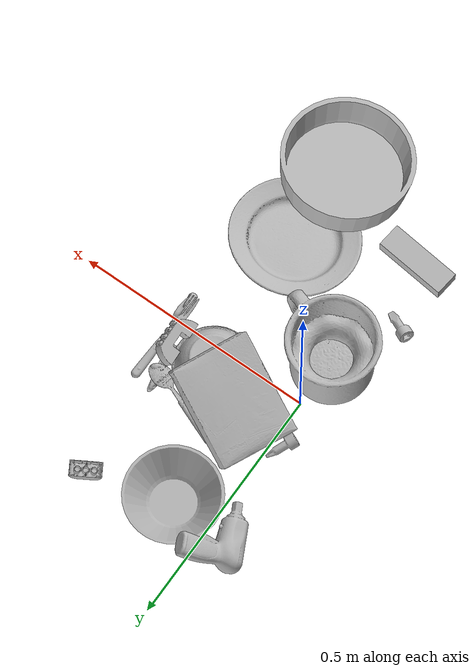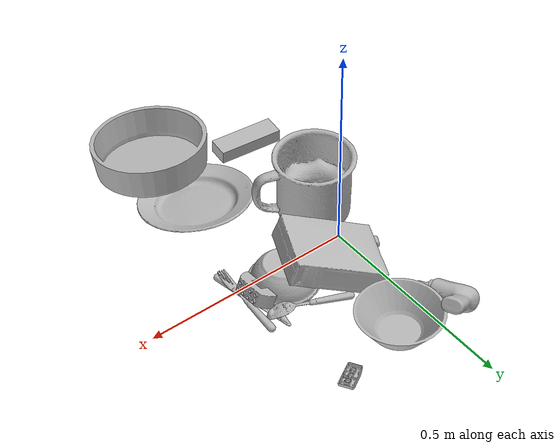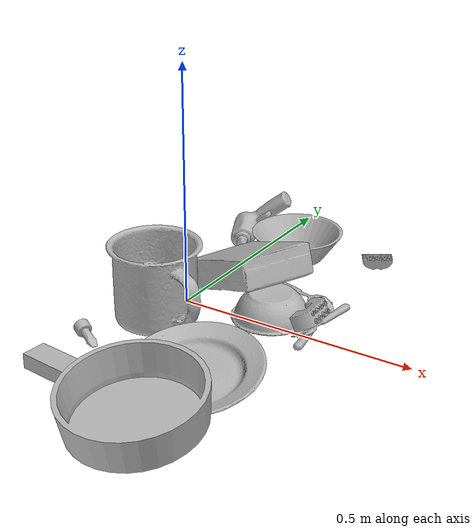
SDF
<sdf version="1.4">
  <world name="default">
    <light name="light1" type="point">
      <pose>0 0 1 0 0 0</pose>
      <diffuse>3 3 3 1</diffuse>
      <specular>3 3 3 1</specular>
    </light>
    <light name="light2" type="point">
      <pose>0 0.5 2 0 0 0</pose>
      <diffuse>1 1 1 1</diffuse>
      <specular>1 1 1 1</specular>
    </light>
    <light name="light3" type="point">
      <pose>0 0.5 2 0 0 0</pose>
      <diffuse>3 3 3 1</diffuse>
      <specular>3 3 3 1</specular>
    </light>
    <scene>
      <ambient>0.7 0.7 0.7</ambient>
    </scene>
    <model name="plate1">
      <link name="link_plate1">
        <collision name="default">
          <geometry>
            <mesh>
              <uri>model://plate/collision_meshes/collision.obj</uri>
              <scale>1.0 1.0 1.0</scale>
            </mesh>
          </geometry>
          <surface>
            <friction>
              <ode>
                <mu>0.5</mu>
                <mu2>0.5</mu2>
              </ode>
            </friction>
          <contact>
        <ode>
            <max_vel>0</max_vel>
            <min_depth>0.0001</min_depth>
            <kp>1e8</kp>
        </ode>
    </contact></surface>
        </collision>
        <visual name="default">
          <geometry>
            <mesh>
              <uri>model://plate/visual_meshes/visual.dae</uri>
              <scale>1.0 1.0 1.0</scale>
            </mesh>
          </geometry>
        </visual>
        <inertial>
          <mass>0.2627958059310913</mass>
          <pose>-0.0006044646725058556 0.00027825895813293755 -0.0010561998933553696 0.0022187866930069794 -0.0032254842153956703 0.4526099982878722</pose>
          <inertia>
            <ixx>0.0012293643</ixx>
            <iyy>0.0012176059</iyy>
            <izz>0.0024044532</izz>
            <ixy>0</ixy>
            <ixz>0</ixz>
            <iyz>0</iyz>
          </inertia>
        </inertial>
      </link>
      <pose>0.19653815031051636 -0.25822174549102783 0.02756265178322792 0.018876857522198594 0.18553595852444815 -1.4536643464233088</pose>
    </model>
    <model name="plate2">
      <link name="link_plate2">
        <collision name="default">
          <geometry>
            <mesh>
              <uri>model://pan_tefal/collision_meshes/collision.obj</uri>
              <scale>1.0 1.0 1.0</scale>
            </mesh>
          </geometry>
          <surface>
            <friction>
              <ode>
                <mu>0.5</mu>
                <mu2>0.5</mu2>
              </ode>
            </friction>
          <contact>
        <ode>
            <max_vel>0</max_vel>
            <min_depth>0.0001</min_depth>
            <kp>1e8</kp>
        </ode>
    </contact></surface>
        </collision>
        <visual name="default">
          <geometry>
            <mesh>
              <uri>model://pan_tefal/visual_meshes/visual.dae</uri>
              <scale>1.0 1.0 1.0</scale>
            </mesh>
          </geometry>
        </visual>
        <inertial>
          <mass>1.5012701749801636</mass>
          <pose>-0.00018001999706029892 3.279017983004451e-05 -0.00851493701338768 0.0008190300793188327 -0.0003301349064117064 -0.3318640955526003</pose>
          <inertia>
            <ixx>0.010363197</ixx>
            <iyy>0.010430007</iyy>
            <izz>0.019076647</izz>
            <ixy>0</ixy>
            <ixz>0</ixz>
            <iyz>0</iyz>
          </inertia>
        </inertial>
      </link>
      <pose>0.196380615234375 -0.43101224303245544 0.049435921013355255 0.10551103871342203 -0.1152078994945986 0.8221826650129508</pose>
    </model>
    <model name="bowl1">
      <link name="link_bowl1">
        <collision name="default">
          <geometry>
            <mesh>
              <uri>model://bowl_a/collision_meshes/collision.obj</uri>
              <scale>1.0 1.0 1.0</scale>
            </mesh>
          </geometry>
          <surface>
            <friction>
              <ode>
                <mu>0.5</mu>
                <mu2>0.5</mu2>
              </ode>
            </friction>
          <contact>
        <ode>
            <max_vel>0</max_vel>
            <min_depth>0.0001</min_depth>
            <kp>1e8</kp>
        </ode>
    </contact></surface>
        </collision>
        <visual name="default">
          <geometry>
            <mesh>
              <uri>model://bowl_a/visual_meshes/visual.dae</uri>
              <scale>1.0 1.0 1.0</scale>
            </mesh>
          </geometry>
        </visual>
        <inertial>
          <mass>0.25230005383491516</mass>
          <pose>0.0002786753175314516 4.731153603643179e-05 -0.001376529224216938 -0.000980537182568925 -0.0010938202432478224 -0.19123453155183487</pose>
          <inertia>
            <ixx>0.00071831</ixx>
            <iyy>0.0007227198</iyy>
            <izz>0.0012775414</izz>
            <ixy>0</ixy>
            <ixz>0</ixz>
            <iyz>0</iyz>
          </inertia>
        </inertial>
      </link>
      <pose>0.08237005025148392 0.3006889224052429 0.03038303554058075 -6.173978695732732e-07 1.1478760271578277e-06 1.0183268485485473</pose>
    </model>
    <model name="bowl2">
      <link name="link_bowl2">
        <collision name="default">
          <geometry>
            <mesh>
              <uri>model://bowl/collision_meshes/collision.obj</uri>
              <scale>1.0 1.0 1.0</scale>
            </mesh>
          </geometry>
          <surface>
            <friction>
              <ode>
                <mu>0.5</mu>
                <mu2>0.5</mu2>
              </ode>
            </friction>
          <contact>
        <ode>
            <max_vel>0</max_vel>
            <min_depth>0.0001</min_depth>
            <kp>1e8</kp>
        </ode>
    </contact></surface>
        </collision>
        <visual name="default">
          <geometry>
            <mesh>
              <uri>model://bowl/visual_meshes/visual.dae</uri>
              <scale>1.0 1.0 1.0</scale>
            </mesh>
          </geometry>
        </visual>
        <inertial>
          <mass>0.09131127595901489</mass>
          <pose>0.00020444947585929185 -0.0010302107548341155 -0.0008042654953896999 -0.01576413996306862 0.014546728377416086 0.7140363947853973</pose>
          <inertia>
            <ixx>0.00020974927</ixx>
            <iyy>0.00020506265</iyy>
            <izz>0.00035287044</izz>
            <ixy>0</ixy>
            <ixz>0</ixz>
            <iyz>0</iyz>
          </inertia>
        </inertial>
      </link>
      <pose>0.1794666051864624 0.03407682850956917 0.027241235598921776 -3.133345138854475 -0.00017743990056093913 1.133788731820052</pose>
    </model>
    <model name="silverware1">
      <link name="link_silverware1">
        <collision name="default">
          <geometry>
            <mesh>
              <uri>model://knife/collision_meshes/collision.obj</uri>
              <scale>1.0 1.0 1.0</scale>
            </mesh>
          </geometry>
          <surface>
            <friction>
              <ode>
                <mu>0.5</mu>
                <mu2>0.5</mu2>
              </ode>
            </friction>
          <contact>
        <ode>
            <max_vel>0</max_vel>
            <min_depth>0.0001</min_depth>
            <kp>1e8</kp>
        </ode>
    </contact></surface>
        </collision>
        <visual name="default">
          <geometry>
            <mesh>
              <uri>model://knife/visual_meshes/visual.dae</uri>
              <scale>1.0 1.0 1.0</scale>
            </mesh>
          </geometry>
        </visual>
        <inertial>
          <mass>0.033491987735033035</mass>
          <pose>-0.023785259574651718 0.00152751209679991 5.062024501967244e-05 0.07305195921562309 0.017248415702697233 -0.007409822782391368</pose>
          <inertia>
            <ixx>9.5063825e-07</ixx>
            <iyy>0.00012867076</iyy>
            <izz>0.00012897696</izz>
            <ixy>0</ixy>
            <ixz>0</ixz>
            <iyz>0</iyz>
          </inertia>
        </inertial>
      </link>
      <pose>0.2698598802089691 0.04323077201843262 0.005903124343603849 3.030387063570313 0.042347774835553444 1.7764413650054611</pose>
    </model>
    <model name="box1">
      <link name="link_box1">
        <collision name="default">
          <geometry>
            <mesh>
              <uri>model://cracker_box/collision_meshes/collision.obj</uri>
              <scale>1.0 1.0 1.0</scale>
            </mesh>
          </geometry>
          <surface>
            <friction>
              <ode>
                <mu>0.5</mu>
                <mu2>0.5</mu2>
              </ode>
            </friction>
          <contact>
        <ode>
            <max_vel>0</max_vel>
            <min_depth>0.0001</min_depth>
            <kp>1e8</kp>
        </ode>
    </contact></surface>
        </collision>
        <visual name="default">
          <geometry>
            <mesh>
              <uri>model://cracker_box/visual_meshes/visual.dae</uri>
              <scale>1.0 1.0 1.0</scale>
            </mesh>
          </geometry>
        </visual>
        <inertial>
          <mass>3.401942253112793</mass>
          <pose>0.0009464150061830878 0.00025434247800149024 -0.001702953246422112 -0.00031620765582640923 -0.011106486806186075 0.0025467954673401043</pose>
          <inertia>
            <ixx>0.008653021</ixx>
            <iyy>0.014287839</iyy>
            <izz>0.020390058</izz>
            <ixy>0</ixy>
            <ixz>0</ixz>
            <iyz>0</iyz>
          </inertia>
        </inertial>
      </link>
      <pose>0.0972357913851738 0.08679021149873734 0.06707517802715302 3.131554294006556 0.3557738400601001 2.7148305245006976</pose>
    </model>
    <model name="box2">
      <link name="link_box2">
        <collision name="default">
          <geometry>
            <mesh>
              <uri>model://jenga/collision_meshes/collision.obj</uri>
              <scale>1.0 1.0 1.0</scale>
            </mesh>
          </geometry>
          <surface>
            <friction>
              <ode>
                <mu>0.5</mu>
                <mu2>0.5</mu2>
              </ode>
            </friction>
          <contact>
        <ode>
            <max_vel>0</max_vel>
            <min_depth>0.0001</min_depth>
            <kp>1e8</kp>
        </ode>
    </contact></surface>
        </collision>
        <visual name="default">
          <geometry>
            <mesh>
              <uri>model://jenga/visual_meshes/visual.dae</uri>
              <scale>1.0 1.0 1.0</scale>
            </mesh>
          </geometry>
        </visual>
        <inertial>
          <mass>0.15917322039604187</mass>
          <pose>-2.502856091268768e-07 -0.00010250010382151231 -4.0923405322246253e-05 0.0 -7.34215461761844e-07 0.0</pose>
          <inertia>
            <ixx>4.4047094e-05</ixx>
            <iyy>0.0002984619</iyy>
            <izz>0.00031863348</izz>
            <ixy>0</ixy>
            <ixz>0</ixz>
            <iyz>0</iyz>
          </inertia>
        </inertial>
      </link>
      <pose>-0.020547285676002502 -0.3615727126598358 0.01500000897794962 3.141592637498796 6.659771584127311e-09 3.027754013760049</pose>
    </model>
    <model name="cup1">
      <link name="link_cup1">
        <collision name="default">
          <geometry>
            <mesh>
              <uri>model://mug/collision_meshes/collision.obj</uri>
              <scale>2.0 2.0 2.0</scale>
            </mesh>
          </geometry>
          <surface>
            <friction>
              <ode>
                <mu>0.5</mu>
                <mu2>0.5</mu2>
              </ode>
            </friction>
          <contact>
        <ode>
            <max_vel>0</max_vel>
            <min_depth>0.0001</min_depth>
            <kp>1e8</kp>
        </ode>
    </contact></surface>
        </collision>
        <visual name="default">
          <geometry>
            <mesh>
              <uri>model://mug/visual_meshes/visual.dae</uri>
              <scale>2.0 2.0 2.0</scale>
            </mesh>
          </geometry>
        </visual>
        <inertial>
          <mass>1.8939067125320435</mass>
          <pose>0.019143342971801758 0.0016286505851894617 -0.02189466543495655 -0.12983139039190478 0.08737723243087561 0.05507286357129759</pose>
          <inertia>
            <ixx>0.0075250226</ixx>
            <iyy>0.008405008</iyy>
            <izz>0.009720505</izz>
            <ixy>0</ixy>
            <ixz>0</ixz>
            <iyz>0</iyz>
          </inertia>
        </inertial>
      </link>
      <pose>0.01675630919635296 -0.10343649238348007 0.081898033618927 -5.8005489480352784e-08 1.1345258308660384e-08 2.7522515190447385</pose>
    </model>
    <model name="silverware2">
      <link name="link_silverware2">
        <collision name="default">
          <geometry>
            <mesh>
              <uri>model://fork/collision_meshes/collision.obj</uri>
              <scale>1.0 1.0 1.0</scale>
            </mesh>
          </geometry>
          <surface>
            <friction>
              <ode>
                <mu>0.5</mu>
                <mu2>0.5</mu2>
              </ode>
            </friction>
          <contact>
        <ode>
            <max_vel>0</max_vel>
            <min_depth>0.0001</min_depth>
            <kp>1e8</kp>
        </ode>
    </contact></surface>
        </collision>
        <visual name="default">
          <geometry>
            <mesh>
              <uri>model://fork/visual_meshes/visual.dae</uri>
              <scale>1.0 1.0 1.0</scale>
            </mesh>
          </geometry>
        </visual>
        <inertial>
          <mass>0.01107261423021555</mass>
          <pose>-0.02957005240023136 0.00046588238910771906 0.0003218861820641905 -0.01355183639158028 -0.010977839693189282 0.014453902572364752</pose>
          <inertia>
            <ixx>3.8815773e-07</ixx>
            <iyy>2.8907412e-05</iyy>
            <izz>2.9081024e-05</izz>
            <ixy>0</ixy>
            <ixz>0</ixz>
            <iyz>0</iyz>
          </inertia>
        </inertial>
      </link>
      <pose>0.2881733179092407 0.04480668902397156 0.014383601024746895 0.33626957169775695 -0.07090373015269434 -1.597729874642983</pose>
    </model>
    <model name="silverware3">
      <link name="link_silverware3">
        <collision name="default">
          <geometry>
            <mesh>
              <uri>model://spoon/collision_meshes/collision.obj</uri>
              <scale>1.0 1.0 1.0</scale>
            </mesh>
          </geometry>
          <surface>
            <friction>
              <ode>
                <mu>0.5</mu>
                <mu2>0.5</mu2>
              </ode>
            </friction>
          <contact>
        <ode>
            <max_vel>0</max_vel>
            <min_depth>0.0001</min_depth>
            <kp>1e8</kp>
        </ode>
    </contact></surface>
        </collision>
        <visual name="default">
          <geometry>
            <mesh>
              <uri>model://spoon/visual_meshes/visual.dae</uri>
              <scale>1.0 1.0 1.0</scale>
            </mesh>
          </geometry>
        </visual>
        <inertial>
          <mass>0.03720218688249588</mass>
          <pose>-0.005526323337107897 -0.00160341733135283 -0.0007271655485965312 0.035216710753312216 -0.03906584126265578 0.006150608185168733</pose>
          <inertia>
            <ixx>2.0692462e-06</ixx>
            <iyy>0.00014155307</iyy>
            <izz>0.00014257352</izz>
            <ixy>0</ixy>
            <ixz>0</ixz>
            <iyz>0</iyz>
          </inertia>
        </inertial>
      </link>
      <pose>0.1844720095396042 0.13026182353496552 0.011947018094360828 -3.0842832447050648 -0.08114130339020394 -0.33047914382618565</pose>
    </model>
    <model name="toy1">
      <link name="link_toy1">
        <collision name="default">
          <geometry>
            <mesh>
              <uri>model://e_toy_airplane/collision_meshes/collision.obj</uri>
              <scale>1.0 1.0 1.0</scale>
            </mesh>
          </geometry>
          <surface>
            <friction>
              <ode>
                <mu>0.5</mu>
                <mu2>0.5</mu2>
              </ode>
            </friction>
          <contact>
        <ode>
            <max_vel>0</max_vel>
            <min_depth>0.0001</min_depth>
            <kp>1e8</kp>
        </ode>
    </contact></surface>
        </collision>
        <visual name="default">
          <geometry>
            <mesh>
              <uri>model://e_toy_airplane/visual_meshes/visual.dae</uri>
              <scale>1.0 1.0 1.0</scale>
            </mesh>
          </geometry>
        </visual>
        <inertial>
          <mass>0.02491888962686062</mass>
          <pose>0.00011740486661437899 -2.248287455586251e-05 -0.011187204159796238 0.00551850201937057 0.009228289896812953 0.1504152046419029</pose>
          <inertia>
            <ixx>7.60553e-06</ixx>
            <iyy>7.52773e-06</iyy>
            <izz>2.2857607e-06</izz>
            <ixy>0</ixy>
            <ixz>0</ixz>
            <iyz>0</iyz>
          </inertia>
        </inertial>
      </link>
      <pose>-0.06378202140331268 -0.23659448325634003 0.010332593694329262 2.4257248396575264 -1.1978179201683417 0.29692083339582276</pose>
    </model>
    <model name="toy2">
      <link name="link_toy2">
        <collision name="default">
          <geometry>
            <mesh>
              <uri>model://e_lego_duplo/collision_meshes/collision.obj</uri>
              <scale>1.0 1.0 1.0</scale>
            </mesh>
          </geometry>
          <surface>
            <friction>
              <ode>
                <mu>0.5</mu>
                <mu2>0.5</mu2>
              </ode>
            </friction>
          <contact>
        <ode>
            <max_vel>0</max_vel>
            <min_depth>0.0001</min_depth>
            <kp>1e8</kp>
        </ode>
    </contact></surface>
        </collision>
        <visual name="default">
          <geometry>
            <mesh>
              <uri>model://e_lego_duplo/visual_meshes/visual.dae</uri>
              <scale>1.0 1.0 1.0</scale>
            </mesh>
          </geometry>
        </visual>
        <inertial>
          <mass>0.08635181933641434</mass>
          <pose>0.00032560451654717326 0.0002348542184336111 0.0019521444337442517 -0.022567902749969417 -6.824781923482006e-05 -0.00762515629770681</pose>
          <inertia>
            <ixx>1.8007207e-05</ixx>
            <iyy>7.390619e-05</iyy>
            <izz>7.1969785e-05</izz>
            <ixy>0</ixy>
            <ixz>0</ixz>
            <iyz>0</iyz>
          </inertia>
        </inertial>
      </link>
      <pose>0.2676830291748047 0.041596632450819016 0.029279550537467003 1.149160808049131 0.0054756952759287825 1.6278361789261486</pose>
    </model>
    <model name="toy3">
      <link name="link_toy3">
        <collision name="default">
          <geometry>
            <mesh>
              <uri>model://d_toy_airplane/collision_meshes/collision.obj</uri>
              <scale>1.0 1.0 1.0</scale>
            </mesh>
          </geometry>
          <surface>
            <friction>
              <ode>
                <mu>0.5</mu>
                <mu2>0.5</mu2>
              </ode>
            </friction>
          <contact>
        <ode>
            <max_vel>0</max_vel>
            <min_depth>0.0001</min_depth>
            <kp>1e8</kp>
        </ode>
    </contact></surface>
        </collision>
        <visual name="default">
          <geometry>
            <mesh>
              <uri>model://d_toy_airplane/visual_meshes/visual.dae</uri>
              <scale>1.0 1.0 1.0</scale>
            </mesh>
          </geometry>
        </visual>
        <inertial>
          <mass>0.01398532185703516</mass>
          <pose>9.410311031388119e-05 -5.809316644445062e-05 -0.011728093959391117 0.00026700916858413164 0.004678987951971881 0.5194708538811167</pose>
          <inertia>
            <ixx>4.1925277e-06</ixx>
            <iyy>4.1956896e-06</iyy>
            <izz>1.2657512e-06</izz>
            <ixy>0</ixy>
            <ixz>0</ixz>
            <iyz>0</iyz>
          </inertia>
        </inertial>
      </link>
      <pose>-0.022080976516008377 0.0954190045595169 0.011406909674406052 1.795909407766246 0.2294105557230311 2.7559154526514784</pose>
    </model>
    <model name="toy4">
      <link name="link_toy4">
        <collision name="default">
          <geometry>
            <mesh>
              <uri>model://b_toy_airplane/collision_meshes/collision.obj</uri>
              <scale>1.0 1.0 1.0</scale>
            </mesh>
          </geometry>
          <surface>
            <friction>
              <ode>
                <mu>0.5</mu>
                <mu2>0.5</mu2>
              </ode>
            </friction>
          <contact>
        <ode>
            <max_vel>0</max_vel>
            <min_depth>0.0001</min_depth>
            <kp>1e8</kp>
        </ode>
    </contact></surface>
        </collision>
        <visual name="default">
          <geometry>
            <mesh>
              <uri>model://b_toy_airplane/visual_meshes/visual.dae</uri>
              <scale>1.0 1.0 1.0</scale>
            </mesh>
          </geometry>
        </visual>
        <inertial>
          <mass>0.39888885617256165</mass>
          <pose>0.00508136348798871 0.0040155863389372826 0.009543065913021564 -0.04001810285123905 -0.040221831504284974 -0.560150355465512</pose>
          <inertia>
            <ixx>0.00074054446</ixx>
            <iyy>0.00029600295</iyy>
            <izz>0.00092131115</izz>
            <ixy>0</ixy>
            <ixz>0</ixz>
            <iyz>0</iyz>
          </inertia>
        </inertial>
      </link>
      <pose>-0.0492829792201519 0.3284662067890167 0.051251474767923355 -2.460048552616957 -0.003958377109376477 -1.1182512327417977</pose>
    </model>
    <model name="toy5">
      <link name="link_toy5">
        <collision name="default">
          <geometry>
            <mesh>
              <uri>model://a_lego_duplo/collision_meshes/collision.obj</uri>
              <scale>1.0 1.0 1.0</scale>
            </mesh>
          </geometry>
          <surface>
            <friction>
              <ode>
                <mu>0.5</mu>
                <mu2>0.5</mu2>
              </ode>
            </friction>
          <contact>
        <ode>
            <max_vel>0</max_vel>
            <min_depth>0.0001</min_depth>
            <kp>1e8</kp>
        </ode>
    </contact></surface>
        </collision>
        <visual name="default">
          <geometry>
            <mesh>
              <uri>model://a_lego_duplo/visual_meshes/visual.dae</uri>
              <scale>1.0 1.0 1.0</scale>
            </mesh>
          </geometry>
        </visual>
        <inertial>
          <mass>0.014756478369235992</mass>
          <pose>-0.00011337623436702415 0.00018517495482228696 0.00036926049506291747 -0.01411700810413075 -0.00012565743579302476 6.142605902116464e-05</pose>
          <inertia>
            <ixx>1.8918981e-06</ixx>
            <iyy>4.238266e-06</iyy>
            <izz>5.250033e-06</izz>
            <ixy>0</ixy>
            <ixz>0</ixz>
            <iyz>0</iyz>
          </inertia>
        </inertial>
      </link>
      <pose>0.2535829544067383 0.34757086634635925 0.012124798260629177 -3.141282435724462 -0.01558267950880544 0.5334298760839946</pose>
    </model>
  <physics type="ode">
      <max_contacts>50</max_contacts>
      <ode>
        <solver>
          <type>quick</type>
          <iters>75</iters>
        </solver>
        <constraints>
          <contact_max_correcting_vel>0</contact_max_correcting_vel>
          <contact_surface_layer>0</contact_surface_layer>
        </constraints>
      </ode>
    </physics></world>
</sdf>
